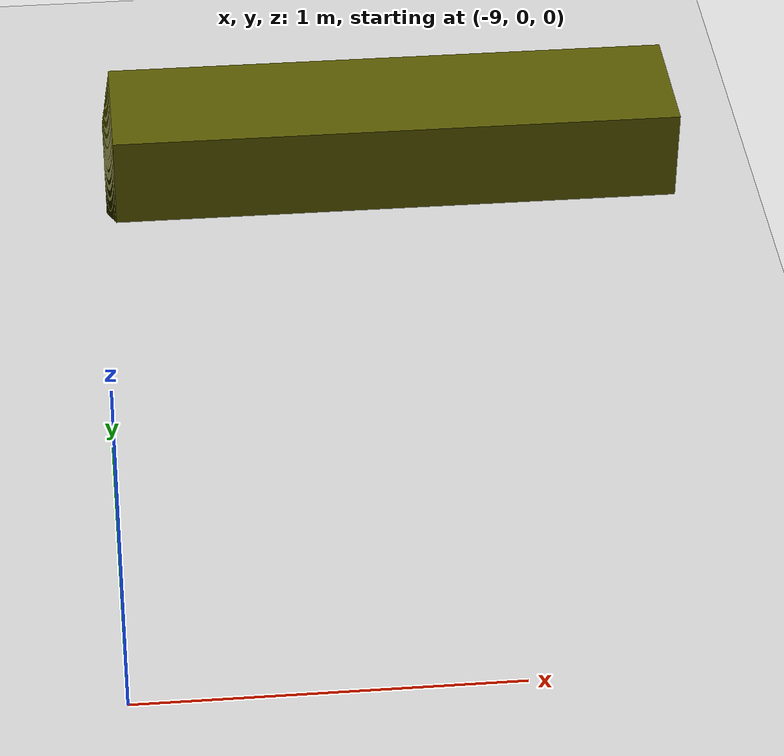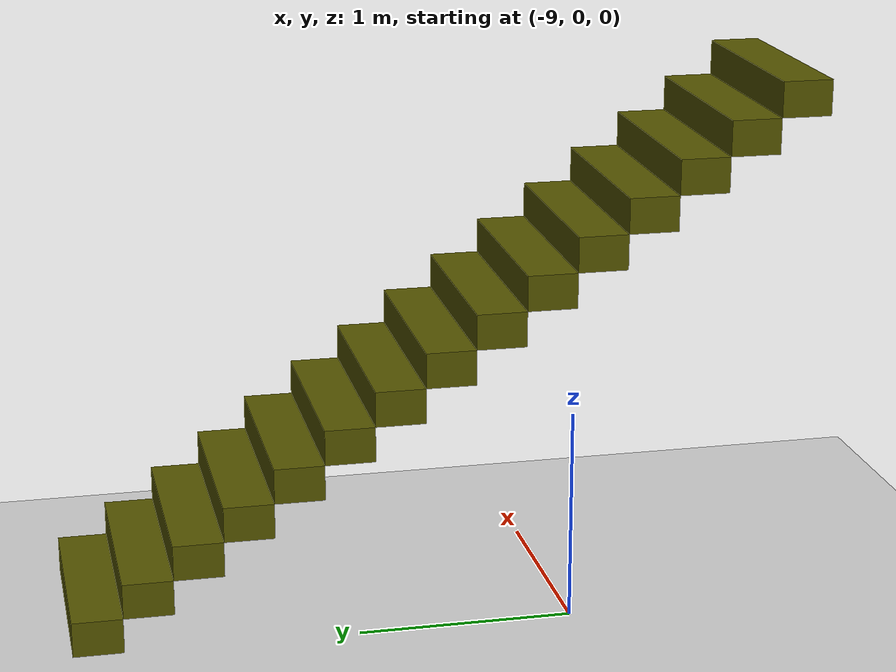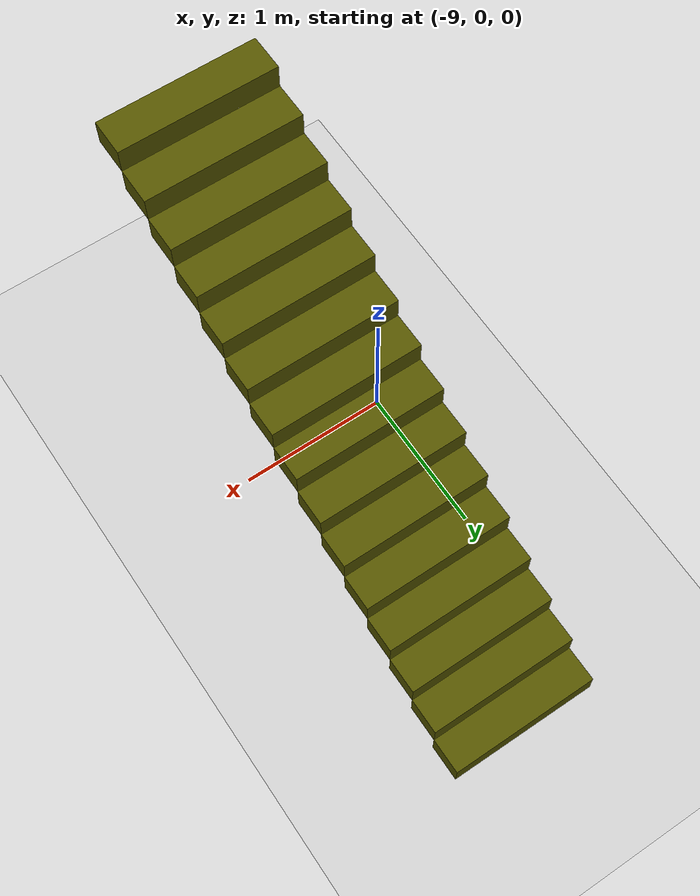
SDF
<sdf version="1.6">
 <world name="default">
  <model name="ground_plane">
   <static>1</static>
   <link name="link">
    <collision name="collision">
     <geometry><plane><normal>0 0 1</normal><size>100 100</size></plane></geometry>
     <surface>
      <contact><collide_bitmask>65535</collide_bitmask></contact>
      <friction><ode><mu>100</mu><mu2>50</mu2></ode></friction>
     </surface>
    </collision>
    <visual name="visual">
     <cast_shadows>0</cast_shadows>
     <geometry><plane><normal>0 0 1</normal><size>100 100</size></plane></geometry>
     <material>
      <script><uri>file://media/materials/scripts/gazebo.material</uri><name>Gazebo/Grey</name></script>
     </material>
    </visual>
   </link>
  </model>
  <model name="homeOffice">
   <link name="Stairs_2">
    <visual name="Stairs_2_Visual_4">
     <pose>-10.1827 -0.188753 0.75 0 -0 0</pose>
     <geometry><box><size>1 0.233333 0.166667</size></box></geometry>
     <material>
      <script><uri>file://media/materials/scripts/gazebo.material</uri><name>Gazebo/Grey</name></script>
      <ambient>0.333333 0.333333 0 1</ambient>
      <shader type="pixel"/>
      <diffuse>0.7 0.7 0.7 1</diffuse>
      <specular>0.01 0.01 0.01 1</specular>
      <emissive>0 0 0 1</emissive>
     </material>
     <meta><layer>0</layer></meta>
    </visual>
    <visual name="Stairs_2_Visual_2">
     <pose>-10.1827 0.277913 0.416667 0 -0 0</pose>
     <geometry><box><size>1 0.233333 0.166667</size></box></geometry>
     <material>
      <script><uri>file://media/materials/scripts/gazebo.material</uri><name>Gazebo/Grey</name></script>
      <ambient>0.333333 0.333333 0 1</ambient>
      <shader type="pixel"/>
      <diffuse>0.7 0.7 0.7 1</diffuse>
      <specular>0.01 0.01 0.01 1</specular>
      <emissive>0 0 0 1</emissive>
     </material>
     <meta><layer>0</layer></meta>
    </visual>
    <visual name="Stairs_2_Visual_0">
     <pose>-10.1827 0.74458 0.083333 0 -0 0</pose>
     <geometry><box><size>1 0.233333 0.166667</size></box></geometry>
     <material>
      <script><uri>file://media/materials/scripts/gazebo.material</uri><name>Gazebo/Grey</name></script>
      <ambient>0.333333 0.333333 0 1</ambient>
      <shader type="pixel"/>
      <diffuse>0.7 0.7 0.7 1</diffuse>
      <specular>0.01 0.01 0.01 1</specular>
      <emissive>0 0 0 1</emissive>
     </material>
     <meta><layer>0</layer></meta>
    </visual>
    <visual name="Stairs_2_Visual_1">
     <pose>-10.1827 0.511247 0.25 0 -0 0</pose>
     <geometry><box><size>1 0.233333 0.166667</size></box></geometry>
     <material>
      <script><uri>file://media/materials/scripts/gazebo.material</uri><name>Gazebo/Grey</name></script>
      <ambient>0.333333 0.333333 0 1</ambient>
      <shader type="pixel"/>
      <diffuse>0.7 0.7 0.7 1</diffuse>
      <specular>0.01 0.01 0.01 1</specular>
      <emissive>0 0 0 1</emissive>
     </material>
     <meta><layer>0</layer></meta>
    </visual>
    <visual name="Stairs_2_Visual_3">
     <pose>-10.1827 0.04458 0.583333 0 -0 0</pose>
     <geometry><box><size>1 0.233333 0.166667</size></box></geometry>
     <material>
      <script><uri>file://media/materials/scripts/gazebo.material</uri><name>Gazebo/Grey</name></script>
      <ambient>0.333333 0.333333 0 1</ambient>
      <shader type="pixel"/>
      <diffuse>0.7 0.7 0.7 1</diffuse>
      <specular>0.01 0.01 0.01 1</specular>
      <emissive>0 0 0 1</emissive>
     </material>
     <meta><layer>0</layer></meta>
    </visual>
    <visual name="Stairs_2_Visual_5">
     <pose>-10.1827 -0.422087 0.916667 0 -0 0</pose>
     <geometry><box><size>1 0.233333 0.166667</size></box></geometry>
     <material>
      <script><uri>file://media/materials/scripts/gazebo.material</uri><name>Gazebo/Grey</name></script>
      <ambient>0.333333 0.333333 0 1</ambient>
      <shader type="pixel"/>
      <diffuse>0.7 0.7 0.7 1</diffuse>
      <specular>0.01 0.01 0.01 1</specular>
      <emissive>0 0 0 1</emissive>
     </material>
     <meta><layer>0</layer></meta>
    </visual>
    <visual name="Stairs_2_Visual_6">
     <pose>-10.1827 -0.65542 1.08333 0 -0 0</pose>
     <geometry><box><size>1 0.233333 0.166667</size></box></geometry>
     <material>
      <script><uri>file://media/materials/scripts/gazebo.material</uri><name>Gazebo/Grey</name></script>
      <ambient>0.333333 0.333333 0 1</ambient>
      <shader type="pixel"/>
      <diffuse>0.7 0.7 0.7 1</diffuse>
      <specular>0.01 0.01 0.01 1</specular>
      <emissive>0 0 0 1</emissive>
     </material>
     <meta><layer>0</layer></meta>
    </visual>
    <visual name="Stairs_2_Visual_7">
     <pose>-10.1827 -0.888753 1.25 0 -0 0</pose>
     <geometry><box><size>1 0.233333 0.166667</size></box></geometry>
     <material>
      <script><uri>file://media/materials/scripts/gazebo.material</uri><name>Gazebo/Grey</name></script>
      <ambient>0.333333 0.333333 0 1</ambient>
      <shader type="pixel"/>
      <diffuse>0.7 0.7 0.7 1</diffuse>
      <specular>0.01 0.01 0.01 1</specular>
      <emissive>0 0 0 1</emissive>
     </material>
     <meta><layer>0</layer></meta>
    </visual>
    <visual name="Stairs_2_Visual_8">
     <pose>-10.1827 -1.12209 1.41667 0 -0 0</pose>
     <geometry><box><size>1 0.233333 0.166667</size></box></geometry>
     <material>
      <script><uri>file://media/materials/scripts/gazebo.material</uri><name>Gazebo/Grey</name></script>
      <ambient>0.333333 0.333333 0 1</ambient>
      <shader type="pixel"/>
      <diffuse>0.7 0.7 0.7 1</diffuse>
      <specular>0.01 0.01 0.01 1</specular>
      <emissive>0 0 0 1</emissive>
     </material>
     <meta><layer>0</layer></meta>
    </visual>
    <visual name="Stairs_2_Visual_9">
     <pose>-10.1827 -1.35542 1.58333 0 -0 0</pose>
     <geometry><box><size>1 0.233333 0.166667</size></box></geometry>
     <material>
      <script><uri>file://media/materials/scripts/gazebo.material</uri><name>Gazebo/Grey</name></script>
      <ambient>0.333333 0.333333 0 1</ambient>
      <shader type="pixel"/>
      <diffuse>0.7 0.7 0.7 1</diffuse>
      <specular>0.01 0.01 0.01 1</specular>
      <emissive>0 0 0 1</emissive>
     </material>
     <meta><layer>0</layer></meta>
    </visual>
    <visual name="Stairs_2_Visual_10">
     <pose>-10.1827 -1.58875 1.75 0 -0 0</pose>
     <geometry><box><size>1 0.233333 0.166667</size></box></geometry>
     <material>
      <script><uri>file://media/materials/scripts/gazebo.material</uri><name>Gazebo/Grey</name></script>
      <ambient>0.333333 0.333333 0 1</ambient>
      <shader type="pixel"/>
      <diffuse>0.7 0.7 0.7 1</diffuse>
      <specular>0.01 0.01 0.01 1</specular>
      <emissive>0 0 0 1</emissive>
     </material>
     <meta><layer>0</layer></meta>
    </visual>
    <visual name="Stairs_2_Visual_11">
     <pose>-10.1827 -1.82209 1.91667 0 -0 0</pose>
     <geometry><box><size>1 0.233333 0.166667</size></box></geometry>
     <material>
      <script><uri>file://media/materials/scripts/gazebo.material</uri><name>Gazebo/Grey</name></script>
      <ambient>0.333333 0.333333 0 1</ambient>
      <shader type="pixel"/>
      <diffuse>0.7 0.7 0.7 1</diffuse>
      <specular>0.01 0.01 0.01 1</specular>
      <emissive>0 0 0 1</emissive>
     </material>
     <meta><layer>0</layer></meta>
    </visual>
    <visual name="Stairs_2_Visual_12">
     <pose>-10.1827 -2.05542 2.08333 0 -0 0</pose>
     <geometry><box><size>1 0.233333 0.166667</size></box></geometry>
     <material>
      <script><uri>file://media/materials/scripts/gazebo.material</uri><name>Gazebo/Grey</name></script>
      <ambient>0.333333 0.333333 0 1</ambient>
      <shader type="pixel"/>
      <diffuse>0.7 0.7 0.7 1</diffuse>
      <specular>0.01 0.01 0.01 1</specular>
      <emissive>0 0 0 1</emissive>
     </material>
     <meta><layer>0</layer></meta>
    </visual>
    <visual name="Stairs_2_Visual_13">
     <pose>-10.1827 -2.28875 2.25 0 -0 0</pose>
     <geometry><box><size>1 0.233333 0.166667</size></box></geometry>
     <material>
      <script><uri>file://media/materials/scripts/gazebo.material</uri><name>Gazebo/Grey</name></script>
      <ambient>0.333333 0.333333 0 1</ambient>
      <shader type="pixel"/>
      <diffuse>0.7 0.7 0.7 1</diffuse>
      <specular>0.01 0.01 0.01 1</specular>
      <emissive>0 0 0 1</emissive>
     </material>
     <meta><layer>0</layer></meta>
    </visual>
    <visual name="Stairs_2_Visual_14">
     <pose>-10.1827 -2.52209 2.41667 0 -0 0</pose>
     <geometry><box><size>1 0.233333 0.166667</size></box></geometry>
     <material>
      <script><uri>file://media/materials/scripts/gazebo.material</uri><name>Gazebo/Grey</name></script>
      <ambient>0.333333 0.333333 0 1</ambient>
      <shader type="pixel"/>
      <diffuse>0.7 0.7 0.7 1</diffuse>
      <specular>0.01 0.01 0.01 1</specular>
      <emissive>0 0 0 1</emissive>
     </material>
     <meta><layer>0</layer></meta>
    </visual>
    <collision name="Stairs_2_Collision_14">
     <pose>-10.1827 -2.52209 2.41667 0 -0 0</pose>
     <geometry><box><size>1 0.233333 0.166667</size></box></geometry>
     <surface>
      <friction>
       <ode><mu>1</mu><mu2>1</mu2><fdir1>0 0 0</fdir1><slip1>0</slip1><slip2>0</slip2></ode>
       <torsional>
        <coefficient>1</coefficient>
        <patch_radius>0</patch_radius>
        <surface_radius>0</surface_radius>
        <use_patch_radius>1</use_patch_radius>
        <ode><slip>0</slip></ode>
       </torsional>
      </friction>
      <bounce><restitution_coefficient>0</restitution_coefficient><threshold>1e+06</threshold></bounce>
      <contact>
       <collide_without_contact>0</collide_without_contact>
       <collide_without_contact_bitmask>1</collide_without_contact_bitmask>
       <collide_bitmask>1</collide_bitmask>
       <ode>
        <soft_cfm>0</soft_cfm>
        <soft_erp>0.2</soft_erp>
        <kp>1e+13</kp>
        <kd>1</kd>
        <max_vel>0.01</max_vel>
        <min_depth>0</min_depth>
       </ode>
       <bullet>
        <split_impulse>1</split_impulse>
        <split_impulse_penetration_threshold>-0.01</split_impulse_penetration_threshold>
        <soft_cfm>0</soft_cfm>
        <soft_erp>0.2</soft_erp>
        <kp>1e+13</kp>
        <kd>1</kd>
       </bullet>
      </contact>
     </surface>
    </collision>
    <collision name="Stairs_2_Collision_0">
     <pose>-10.1827 0.74458 0.083333 0 -0 0</pose>
     <geometry><box><size>1 0.233333 0.166667</size></box></geometry>
     <surface>
      <friction>
       <ode><mu>1</mu><mu2>1</mu2><fdir1>0 0 0</fdir1><slip1>0</slip1><slip2>0</slip2></ode>
       <torsional>
        <coefficient>1</coefficient>
        <patch_radius>0</patch_radius>
        <surface_radius>0</surface_radius>
        <use_patch_radius>1</use_patch_radius>
        <ode><slip>0</slip></ode>
       </torsional>
      </friction>
      <bounce><restitution_coefficient>0</restitution_coefficient><threshold>1e+06</threshold></bounce>
      <contact>
       <collide_without_contact>0</collide_without_contact>
       <collide_without_contact_bitmask>1</collide_without_contact_bitmask>
       <collide_bitmask>1</collide_bitmask>
       <ode>
        <soft_cfm>0</soft_cfm>
        <soft_erp>0.2</soft_erp>
        <kp>1e+13</kp>
        <kd>1</kd>
        <max_vel>0.01</max_vel>
        <min_depth>0</min_depth>
       </ode>
       <bullet>
        <split_impulse>1</split_impulse>
        <split_impulse_penetration_threshold>-0.01</split_impulse_penetration_threshold>
        <soft_cfm>0</soft_cfm>
        <soft_erp>0.2</soft_erp>
        <kp>1e+13</kp>
        <kd>1</kd>
       </bullet>
      </contact>
     </surface>
    </collision>
    <collision name="Stairs_2_Collision_1">
     <pose>-10.1827 0.511247 0.25 0 -0 0</pose>
     <geometry><box><size>1 0.233333 0.166667</size></box></geometry>
     <surface>
      <friction>
       <ode><mu>1</mu><mu2>1</mu2><fdir1>0 0 0</fdir1><slip1>0</slip1><slip2>0</slip2></ode>
       <torsional>
        <coefficient>1</coefficient>
        <patch_radius>0</patch_radius>
        <surface_radius>0</surface_radius>
        <use_patch_radius>1</use_patch_radius>
        <ode><slip>0</slip></ode>
       </torsional>
      </friction>
      <bounce><restitution_coefficient>0</restitution_coefficient><threshold>1e+06</threshold></bounce>
      <contact>
       <collide_without_contact>0</collide_without_contact>
       <collide_without_contact_bitmask>1</collide_without_contact_bitmask>
       <collide_bitmask>1</collide_bitmask>
       <ode>
        <soft_cfm>0</soft_cfm>
        <soft_erp>0.2</soft_erp>
        <kp>1e+13</kp>
        <kd>1</kd>
        <max_vel>0.01</max_vel>
        <min_depth>0</min_depth>
       </ode>
       <bullet>
        <split_impulse>1</split_impulse>
        <split_impulse_penetration_threshold>-0.01</split_impulse_penetration_threshold>
        <soft_cfm>0</soft_cfm>
        <soft_erp>0.2</soft_erp>
        <kp>1e+13</kp>
        <kd>1</kd>
       </bullet>
      </contact>
     </surface>
    </collision>
    <collision name="Stairs_2_Collision_3">
     <pose>-10.1827 0.04458 0.583333 0 -0 0</pose>
     <geometry><box><size>1 0.233333 0.166667</size></box></geometry>
     <surface>
      <friction>
       <ode><mu>1</mu><mu2>1</mu2><fdir1>0 0 0</fdir1><slip1>0</slip1><slip2>0</slip2></ode>
       <torsional>
        <coefficient>1</coefficient>
        <patch_radius>0</patch_radius>
        <surface_radius>0</surface_radius>
        <use_patch_radius>1</use_patch_radius>
        <ode><slip>0</slip></ode>
       </torsional>
      </friction>
      <bounce><restitution_coefficient>0</restitution_coefficient><threshold>1e+06</threshold></bounce>
      <contact>
       <collide_without_contact>0</collide_without_contact>
       <collide_without_contact_bitmask>1</collide_without_contact_bitmask>
       <collide_bitmask>1</collide_bitmask>
       <ode>
        <soft_cfm>0</soft_cfm>
        <soft_erp>0.2</soft_erp>
        <kp>1e+13</kp>
        <kd>1</kd>
        <max_vel>0.01</max_vel>
        <min_depth>0</min_depth>
       </ode>
       <bullet>
        <split_impulse>1</split_impulse>
        <split_impulse_penetration_threshold>-0.01</split_impulse_penetration_threshold>
        <soft_cfm>0</soft_cfm>
        <soft_erp>0.2</soft_erp>
        <kp>1e+13</kp>
        <kd>1</kd>
       </bullet>
      </contact>
     </surface>
    </collision>
    <collision name="Stairs_2_Collision_2">
     <pose>-10.1827 0.277913 0.416667 0 -0 0</pose>
     <geometry><box><size>1 0.233333 0.166667</size></box></geometry>
     <surface>
      <friction>
       <ode><mu>1</mu><mu2>1</mu2><fdir1>0 0 0</fdir1><slip1>0</slip1><slip2>0</slip2></ode>
       <torsional>
        <coefficient>1</coefficient>
        <patch_radius>0</patch_radius>
        <surface_radius>0</surface_radius>
        <use_patch_radius>1</use_patch_radius>
        <ode><slip>0</slip></ode>
       </torsional>
      </friction>
      <bounce><restitution_coefficient>0</restitution_coefficient><threshold>1e+06</threshold></bounce>
      <contact>
       <collide_without_contact>0</collide_without_contact>
       <collide_without_contact_bitmask>1</collide_without_contact_bitmask>
       <collide_bitmask>1</collide_bitmask>
       <ode>
        <soft_cfm>0</soft_cfm>
        <soft_erp>0.2</soft_erp>
        <kp>1e+13</kp>
        <kd>1</kd>
        <max_vel>0.01</max_vel>
        <min_depth>0</min_depth>
       </ode>
       <bullet>
        <split_impulse>1</split_impulse>
        <split_impulse_penetration_threshold>-0.01</split_impulse_penetration_threshold>
        <soft_cfm>0</soft_cfm>
        <soft_erp>0.2</soft_erp>
        <kp>1e+13</kp>
        <kd>1</kd>
       </bullet>
      </contact>
     </surface>
    </collision>
    <collision name="Stairs_2_Collision_4">
     <pose>-10.1827 -0.188753 0.75 0 -0 0</pose>
     <geometry><box><size>1 0.233333 0.166667</size></box></geometry>
     <surface>
      <friction>
       <ode><mu>1</mu><mu2>1</mu2><fdir1>0 0 0</fdir1><slip1>0</slip1><slip2>0</slip2></ode>
       <torsional>
        <coefficient>1</coefficient>
        <patch_radius>0</patch_radius>
        <surface_radius>0</surface_radius>
        <use_patch_radius>1</use_patch_radius>
        <ode><slip>0</slip></ode>
       </torsional>
      </friction>
      <bounce><restitution_coefficient>0</restitution_coefficient><threshold>1e+06</threshold></bounce>
      <contact>
       <collide_without_contact>0</collide_without_contact>
       <collide_without_contact_bitmask>1</collide_without_contact_bitmask>
       <collide_bitmask>1</collide_bitmask>
       <ode>
        <soft_cfm>0</soft_cfm>
        <soft_erp>0.2</soft_erp>
        <kp>1e+13</kp>
        <kd>1</kd>
        <max_vel>0.01</max_vel>
        <min_depth>0</min_depth>
       </ode>
       <bullet>
        <split_impulse>1</split_impulse>
        <split_impulse_penetration_threshold>-0.01</split_impulse_penetration_threshold>
        <soft_cfm>0</soft_cfm>
        <soft_erp>0.2</soft_erp>
        <kp>1e+13</kp>
        <kd>1</kd>
       </bullet>
      </contact>
     </surface>
    </collision>
    <collision name="Stairs_2_Collision_6">
     <pose>-10.1827 -0.65542 1.08333 0 -0 0</pose>
     <geometry><box><size>1 0.233333 0.166667</size></box></geometry>
     <surface>
      <friction>
       <ode><mu>1</mu><mu2>1</mu2><fdir1>0 0 0</fdir1><slip1>0</slip1><slip2>0</slip2></ode>
       <torsional>
        <coefficient>1</coefficient>
        <patch_radius>0</patch_radius>
        <surface_radius>0</surface_radius>
        <use_patch_radius>1</use_patch_radius>
        <ode><slip>0</slip></ode>
       </torsional>
      </friction>
      <bounce><restitution_coefficient>0</restitution_coefficient><threshold>1e+06</threshold></bounce>
      <contact>
       <collide_without_contact>0</collide_without_contact>
       <collide_without_contact_bitmask>1</collide_without_contact_bitmask>
       <collide_bitmask>1</collide_bitmask>
       <ode>
        <soft_cfm>0</soft_cfm>
        <soft_erp>0.2</soft_erp>
        <kp>1e+13</kp>
        <kd>1</kd>
        <max_vel>0.01</max_vel>
        <min_depth>0</min_depth>
       </ode>
       <bullet>
        <split_impulse>1</split_impulse>
        <split_impulse_penetration_threshold>-0.01</split_impulse_penetration_threshold>
        <soft_cfm>0</soft_cfm>
        <soft_erp>0.2</soft_erp>
        <kp>1e+13</kp>
        <kd>1</kd>
       </bullet>
      </contact>
     </surface>
    </collision>
    <collision name="Stairs_2_Collision_5">
     <pose>-10.1827 -0.422087 0.916667 0 -0 0</pose>
     <geometry><box><size>1 0.233333 0.166667</size></box></geometry>
     <surface>
      <friction>
       <ode><mu>1</mu><mu2>1</mu2><fdir1>0 0 0</fdir1><slip1>0</slip1><slip2>0</slip2></ode>
       <torsional>
        <coefficient>1</coefficient>
        <patch_radius>0</patch_radius>
        <surface_radius>0</surface_radius>
        <use_patch_radius>1</use_patch_radius>
        <ode><slip>0</slip></ode>
       </torsional>
      </friction>
      <bounce><restitution_coefficient>0</restitution_coefficient><threshold>1e+06</threshold></bounce>
      <contact>
       <collide_without_contact>0</collide_without_contact>
       <collide_without_contact_bitmask>1</collide_without_contact_bitmask>
       <collide_bitmask>1</collide_bitmask>
       <ode>
        <soft_cfm>0</soft_cfm>
        <soft_erp>0.2</soft_erp>
        <kp>1e+13</kp>
        <kd>1</kd>
        <max_vel>0.01</max_vel>
        <min_depth>0</min_depth>
       </ode>
       <bullet>
        <split_impulse>1</split_impulse>
        <split_impulse_penetration_threshold>-0.01</split_impulse_penetration_threshold>
        <soft_cfm>0</soft_cfm>
        <soft_erp>0.2</soft_erp>
        <kp>1e+13</kp>
        <kd>1</kd>
       </bullet>
      </contact>
     </surface>
    </collision>
    <collision name="Stairs_2_Collision_7">
     <pose>-10.1827 -0.888753 1.25 0 -0 0</pose>
     <geometry><box><size>1 0.233333 0.166667</size></box></geometry>
     <surface>
      <friction>
       <ode><mu>1</mu><mu2>1</mu2><fdir1>0 0 0</fdir1><slip1>0</slip1><slip2>0</slip2></ode>
       <torsional>
        <coefficient>1</coefficient>
        <patch_radius>0</patch_radius>
        <surface_radius>0</surface_radius>
        <use_patch_radius>1</use_patch_radius>
        <ode><slip>0</slip></ode>
       </torsional>
      </friction>
      <bounce><restitution_coefficient>0</restitution_coefficient><threshold>1e+06</threshold></bounce>
      <contact>
       <collide_without_contact>0</collide_without_contact>
       <collide_without_contact_bitmask>1</collide_without_contact_bitmask>
       <collide_bitmask>1</collide_bitmask>
       <ode>
        <soft_cfm>0</soft_cfm>
        <soft_erp>0.2</soft_erp>
        <kp>1e+13</kp>
        <kd>1</kd>
        <max_vel>0.01</max_vel>
        <min_depth>0</min_depth>
       </ode>
       <bullet>
        <split_impulse>1</split_impulse>
        <split_impulse_penetration_threshold>-0.01</split_impulse_penetration_threshold>
        <soft_cfm>0</soft_cfm>
        <soft_erp>0.2</soft_erp>
        <kp>1e+13</kp>
        <kd>1</kd>
       </bullet>
      </contact>
     </surface>
    </collision>
    <collision name="Stairs_2_Collision_8">
     <pose>-10.1827 -1.12209 1.41667 0 -0 0</pose>
     <geometry><box><size>1 0.233333 0.166667</size></box></geometry>
     <surface>
      <friction>
       <ode><mu>1</mu><mu2>1</mu2><fdir1>0 0 0</fdir1><slip1>0</slip1><slip2>0</slip2></ode>
       <torsional>
        <coefficient>1</coefficient>
        <patch_radius>0</patch_radius>
        <surface_radius>0</surface_radius>
        <use_patch_radius>1</use_patch_radius>
        <ode><slip>0</slip></ode>
       </torsional>
      </friction>
      <bounce><restitution_coefficient>0</restitution_coefficient><threshold>1e+06</threshold></bounce>
      <contact>
       <collide_without_contact>0</collide_without_contact>
       <collide_without_contact_bitmask>1</collide_without_contact_bitmask>
       <collide_bitmask>1</collide_bitmask>
       <ode>
        <soft_cfm>0</soft_cfm>
        <soft_erp>0.2</soft_erp>
        <kp>1e+13</kp>
        <kd>1</kd>
        <max_vel>0.01</max_vel>
        <min_depth>0</min_depth>
       </ode>
       <bullet>
        <split_impulse>1</split_impulse>
        <split_impulse_penetration_threshold>-0.01</split_impulse_penetration_threshold>
        <soft_cfm>0</soft_cfm>
        <soft_erp>0.2</soft_erp>
        <kp>1e+13</kp>
        <kd>1</kd>
       </bullet>
      </contact>
     </surface>
    </collision>
    <collision name="Stairs_2_Collision_9">
     <pose>-10.1827 -1.35542 1.58333 0 -0 0</pose>
     <geometry><box><size>1 0.233333 0.166667</size></box></geometry>
     <surface>
      <friction>
       <ode><mu>1</mu><mu2>1</mu2><fdir1>0 0 0</fdir1><slip1>0</slip1><slip2>0</slip2></ode>
       <torsional>
        <coefficient>1</coefficient>
        <patch_radius>0</patch_radius>
        <surface_radius>0</surface_radius>
        <use_patch_radius>1</use_patch_radius>
        <ode><slip>0</slip></ode>
       </torsional>
      </friction>
      <bounce><restitution_coefficient>0</restitution_coefficient><threshold>1e+06</threshold></bounce>
      <contact>
       <collide_without_contact>0</collide_without_contact>
       <collide_without_contact_bitmask>1</collide_without_contact_bitmask>
       <collide_bitmask>1</collide_bitmask>
       <ode>
        <soft_cfm>0</soft_cfm>
        <soft_erp>0.2</soft_erp>
        <kp>1e+13</kp>
        <kd>1</kd>
        <max_vel>0.01</max_vel>
        <min_depth>0</min_depth>
       </ode>
       <bullet>
        <split_impulse>1</split_impulse>
        <split_impulse_penetration_threshold>-0.01</split_impulse_penetration_threshold>
        <soft_cfm>0</soft_cfm>
        <soft_erp>0.2</soft_erp>
        <kp>1e+13</kp>
        <kd>1</kd>
       </bullet>
      </contact>
     </surface>
    </collision>
    <collision name="Stairs_2_Collision_12">
     <pose>-10.1827 -2.05542 2.08333 0 -0 0</pose>
     <geometry><box><size>1 0.233333 0.166667</size></box></geometry>
     <surface>
      <friction>
       <ode><mu>1</mu><mu2>1</mu2><fdir1>0 0 0</fdir1><slip1>0</slip1><slip2>0</slip2></ode>
       <torsional>
        <coefficient>1</coefficient>
        <patch_radius>0</patch_radius>
        <surface_radius>0</surface_radius>
        <use_patch_radius>1</use_patch_radius>
        <ode><slip>0</slip></ode>
       </torsional>
      </friction>
      <bounce><restitution_coefficient>0</restitution_coefficient><threshold>1e+06</threshold></bounce>
      <contact>
       <collide_without_contact>0</collide_without_contact>
       <collide_without_contact_bitmask>1</collide_without_contact_bitmask>
       <collide_bitmask>1</collide_bitmask>
       <ode>
        <soft_cfm>0</soft_cfm>
        <soft_erp>0.2</soft_erp>
        <kp>1e+13</kp>
        <kd>1</kd>
        <max_vel>0.01</max_vel>
        <min_depth>0</min_depth>
       </ode>
       <bullet>
        <split_impulse>1</split_impulse>
        <split_impulse_penetration_threshold>-0.01</split_impulse_penetration_threshold>
        <soft_cfm>0</soft_cfm>
        <soft_erp>0.2</soft_erp>
        <kp>1e+13</kp>
        <kd>1</kd>
       </bullet>
      </contact>
     </surface>
    </collision>
    <collision name="Stairs_2_Collision_11">
     <pose>-10.1827 -1.82209 1.91667 0 -0 0</pose>
     <geometry><box><size>1 0.233333 0.166667</size></box></geometry>
     <surface>
      <friction>
       <ode><mu>1</mu><mu2>1</mu2><fdir1>0 0 0</fdir1><slip1>0</slip1><slip2>0</slip2></ode>
       <torsional>
        <coefficient>1</coefficient>
        <patch_radius>0</patch_radius>
        <surface_radius>0</surface_radius>
        <use_patch_radius>1</use_patch_radius>
        <ode><slip>0</slip></ode>
       </torsional>
      </friction>
      <bounce><restitution_coefficient>0</restitution_coefficient><threshold>1e+06</threshold></bounce>
      <contact>
       <collide_without_contact>0</collide_without_contact>
       <collide_without_contact_bitmask>1</collide_without_contact_bitmask>
       <collide_bitmask>1</collide_bitmask>
       <ode>
        <soft_cfm>0</soft_cfm>
        <soft_erp>0.2</soft_erp>
        <kp>1e+13</kp>
        <kd>1</kd>
        <max_vel>0.01</max_vel>
        <min_depth>0</min_depth>
       </ode>
       <bullet>
        <split_impulse>1</split_impulse>
        <split_impulse_penetration_threshold>-0.01</split_impulse_penetration_threshold>
        <soft_cfm>0</soft_cfm>
        <soft_erp>0.2</soft_erp>
        <kp>1e+13</kp>
        <kd>1</kd>
       </bullet>
      </contact>
     </surface>
    </collision>
    <collision name="Stairs_2_Collision_10">
     <pose>-10.1827 -1.58875 1.75 0 -0 0</pose>
     <geometry><box><size>1 0.233333 0.166667</size></box></geometry>
     <surface>
      <friction>
       <ode><mu>1</mu><mu2>1</mu2><fdir1>0 0 0</fdir1><slip1>0</slip1><slip2>0</slip2></ode>
       <torsional>
        <coefficient>1</coefficient>
        <patch_radius>0</patch_radius>
        <surface_radius>0</surface_radius>
        <use_patch_radius>1</use_patch_radius>
        <ode><slip>0</slip></ode>
       </torsional>
      </friction>
      <bounce><restitution_coefficient>0</restitution_coefficient><threshold>1e+06</threshold></bounce>
      <contact>
       <collide_without_contact>0</collide_without_contact>
       <collide_without_contact_bitmask>1</collide_without_contact_bitmask>
       <collide_bitmask>1</collide_bitmask>
       <ode>
        <soft_cfm>0</soft_cfm>
        <soft_erp>0.2</soft_erp>
        <kp>1e+13</kp>
        <kd>1</kd>
        <max_vel>0.01</max_vel>
        <min_depth>0</min_depth>
       </ode>
       <bullet>
        <split_impulse>1</split_impulse>
        <split_impulse_penetration_threshold>-0.01</split_impulse_penetration_threshold>
        <soft_cfm>0</soft_cfm>
        <soft_erp>0.2</soft_erp>
        <kp>1e+13</kp>
        <kd>1</kd>
       </bullet>
      </contact>
     </surface>
    </collision>
    <collision name="Stairs_2_Collision_13">
     <pose>-10.1827 -2.28875 2.25 0 -0 0</pose>
     <geometry><box><size>1 0.233333 0.166667</size></box></geometry>
     <surface>
      <friction>
       <ode><mu>1</mu><mu2>1</mu2><fdir1>0 0 0</fdir1><slip1>0</slip1><slip2>0</slip2></ode>
       <torsional>
        <coefficient>1</coefficient>
        <patch_radius>0</patch_radius>
        <surface_radius>0</surface_radius>
        <use_patch_radius>1</use_patch_radius>
        <ode><slip>0</slip></ode>
       </torsional>
      </friction>
      <bounce><restitution_coefficient>0</restitution_coefficient><threshold>1e+06</threshold></bounce>
      <contact>
       <collide_without_contact>0</collide_without_contact>
       <collide_without_contact_bitmask>1</collide_without_contact_bitmask>
       <collide_bitmask>1</collide_bitmask>
       <ode>
        <soft_cfm>0</soft_cfm>
        <soft_erp>0.2</soft_erp>
        <kp>1e+13</kp>
        <kd>1</kd>
        <max_vel>0.01</max_vel>
        <min_depth>0</min_depth>
       </ode>
       <bullet>
        <split_impulse>1</split_impulse>
        <split_impulse_penetration_threshold>-0.01</split_impulse_penetration_threshold>
        <soft_cfm>0</soft_cfm>
        <soft_erp>0.2</soft_erp>
        <kp>1e+13</kp>
        <kd>1</kd>
       </bullet>
      </contact>
     </surface>
    </collision>
   </link>
   <static>1</static>
   <pose>1.7028 1.4546 0 0 -0 0</pose>
  </model>
 </world>
</sdf>
